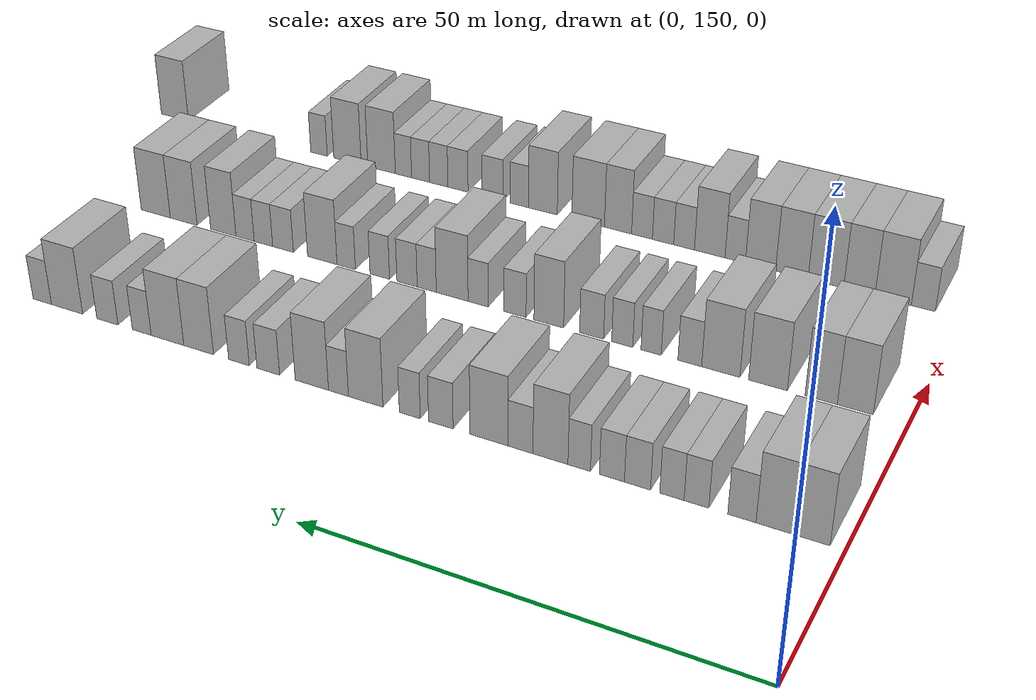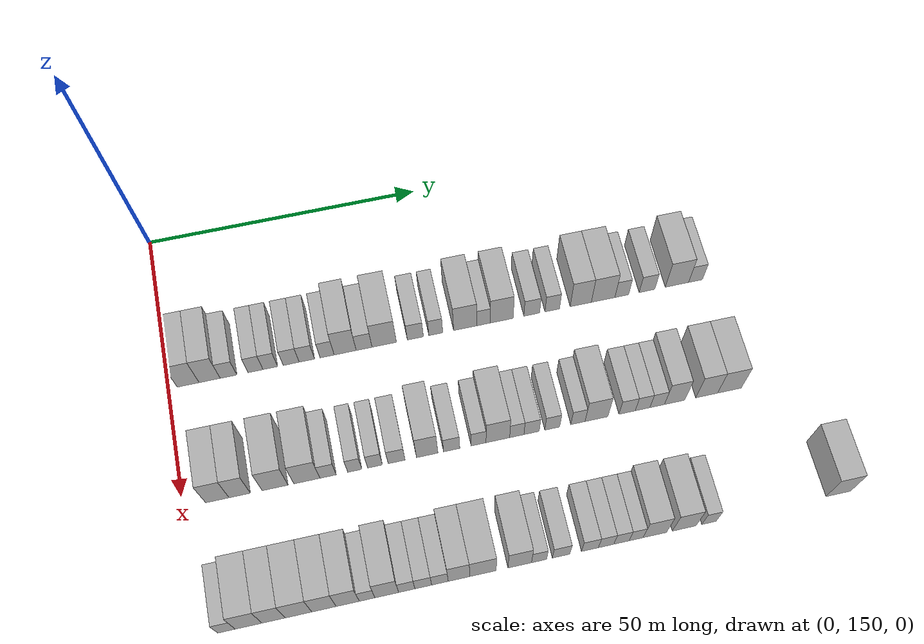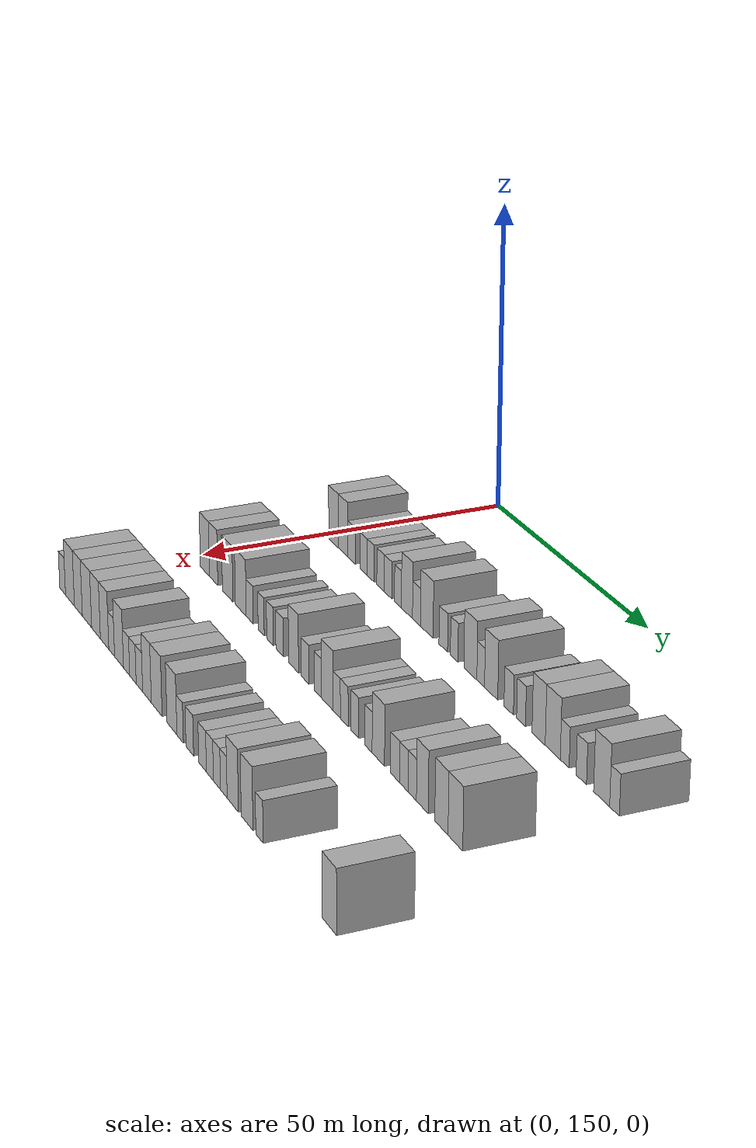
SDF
<sdf version="1.6">
 <world name="default">
  <model name="building_96">
   <static>1</static>
   <pose>25.0000 153.5775 0 0.000000 0.000000 0.000000</pose>
   <link name="link">
    <pose>0 0 4.50 0 0 0</pose>
    <collision name="collision"><geometry><box><size>10.0000 3.8732 9.0000</size></box></geometry></collision>
    <visual name="visual">
     <cast_shadows>0</cast_shadows>
     <geometry><box><size>10.0000 3.8732 9.0000</size></box></geometry>
     <material>
      <script>
       <uri>model://HANNAS_wall/materials/scripts</uri>
       <uri>model://HANNAS_wall/materials/textures</uri>
       <name>vrc/HANNAS_wall</name>
      </script>
     </material>
    </visual>
   </link>
  </model>
  <model name="building_97">
   <static>1</static>
   <pose>25.0000 157.3864 0 0.000000 0.000000 0.000000</pose>
   <link name="link">
    <pose>0 0 4.50 0 0 0</pose>
    <collision name="collision"><geometry><box><size>10.0000 3.7445 9.0000</size></box></geometry></collision>
    <visual name="visual">
     <cast_shadows>0</cast_shadows>
     <geometry><box><size>10.0000 3.7445 9.0000</size></box></geometry>
     <material>
      <script>
       <uri>model://HANNAS_wall/materials/scripts</uri>
       <uri>model://HANNAS_wall/materials/textures</uri>
       <name>vrc/HANNAS_wall</name>
      </script>
     </material>
    </visual>
   </link>
  </model>
  <model name="building_98">
   <static>1</static>
   <pose>25.0000 160.7393 0 0.000000 0.000000 0.000000</pose>
   <link name="link">
    <pose>0 0 3.00 0 0 0</pose>
    <collision name="collision"><geometry><box><size>10.0000 2.9612 6.0000</size></box></geometry></collision>
    <visual name="visual">
     <cast_shadows>0</cast_shadows>
     <geometry><box><size>10.0000 2.9612 6.0000</size></box></geometry>
     <material>
      <script>
       <uri>model://HANNAS_wall/materials/scripts</uri>
       <uri>model://HANNAS_wall/materials/textures</uri>
       <name>vrc/HANNAS_wall</name>
      </script>
     </material>
    </visual>
   </link>
  </model>
  <model name="building_99">
   <static>1</static>
   <pose>25.0000 165.5479 0 0.000000 0.000000 0.000000</pose>
   <link name="link">
    <pose>0 0 3.00 0 0 0</pose>
    <collision name="collision"><geometry><box><size>10.0000 2.6561 6.0000</size></box></geometry></collision>
    <visual name="visual">
     <cast_shadows>0</cast_shadows>
     <geometry><box><size>10.0000 2.6561 6.0000</size></box></geometry>
     <material>
      <script>
       <uri>model://HANNAS_wall/materials/scripts</uri>
       <uri>model://HANNAS_wall/materials/textures</uri>
       <name>vrc/HANNAS_wall</name>
      </script>
     </material>
    </visual>
   </link>
  </model>
  <model name="building_100">
   <static>1</static>
   <pose>25.0000 168.1900 0 0.000000 0.000000 0.000000</pose>
   <link name="link">
    <pose>0 0 3.00 0 0 0</pose>
    <collision name="collision"><geometry><box><size>10.0000 2.6281 6.0000</size></box></geometry></collision>
    <visual name="visual">
     <cast_shadows>0</cast_shadows>
     <geometry><box><size>10.0000 2.6281 6.0000</size></box></geometry>
     <material>
      <script>
       <uri>model://HANNAS_wall/materials/scripts</uri>
       <uri>model://HANNAS_wall/materials/textures</uri>
       <name>vrc/HANNAS_wall</name>
      </script>
     </material>
    </visual>
   </link>
  </model>
  <model name="building_101">
   <static>1</static>
   <pose>25.0000 171.9355 0 0.000000 0.000000 0.000000</pose>
   <link name="link">
    <pose>0 0 3.00 0 0 0</pose>
    <collision name="collision"><geometry><box><size>10.0000 2.8630 6.0000</size></box></geometry></collision>
    <visual name="visual">
     <cast_shadows>0</cast_shadows>
     <geometry><box><size>10.0000 2.8630 6.0000</size></box></geometry>
     <material>
      <script>
       <uri>model://HANNAS_wall/materials/scripts</uri>
       <uri>model://HANNAS_wall/materials/textures</uri>
       <name>vrc/HANNAS_wall</name>
      </script>
     </material>
    </visual>
   </link>
  </model>
  <model name="building_102">
   <static>1</static>
   <pose>25.0000 174.7553 0 0.000000 0.000000 0.000000</pose>
   <link name="link">
    <pose>0 0 3.00 0 0 0</pose>
    <collision name="collision"><geometry><box><size>10.0000 2.7766 6.0000</size></box></geometry></collision>
    <visual name="visual">
     <cast_shadows>0</cast_shadows>
     <geometry><box><size>10.0000 2.7766 6.0000</size></box></geometry>
     <material>
      <script>
       <uri>model://HANNAS_wall/materials/scripts</uri>
       <uri>model://HANNAS_wall/materials/textures</uri>
       <name>vrc/HANNAS_wall</name>
      </script>
     </material>
    </visual>
   </link>
  </model>
  <model name="building_103">
   <static>1</static>
   <pose>25.0000 178.4107 0 0.000000 0.000000 0.000000</pose>
   <link name="link">
    <pose>0 0 3.00 0 0 0</pose>
    <collision name="collision"><geometry><box><size>10.0000 2.5343 6.0000</size></box></geometry></collision>
    <visual name="visual">
     <cast_shadows>0</cast_shadows>
     <geometry><box><size>10.0000 2.5343 6.0000</size></box></geometry>
     <material>
      <script>
       <uri>model://HANNAS_wall/materials/scripts</uri>
       <uri>model://HANNAS_wall/materials/textures</uri>
       <name>vrc/HANNAS_wall</name>
      </script>
     </material>
    </visual>
   </link>
  </model>
  <model name="building_104">
   <static>1</static>
   <pose>25.0000 181.6735 0 0.000000 0.000000 0.000000</pose>
   <link name="link">
    <pose>0 0 4.50 0 0 0</pose>
    <collision name="collision"><geometry><box><size>10.0000 3.9914 9.0000</size></box></geometry></collision>
    <visual name="visual">
     <cast_shadows>0</cast_shadows>
     <geometry><box><size>10.0000 3.9914 9.0000</size></box></geometry>
     <material>
      <script>
       <uri>model://HANNAS_wall/materials/scripts</uri>
       <uri>model://HANNAS_wall/materials/textures</uri>
       <name>vrc/HANNAS_wall</name>
      </script>
     </material>
    </visual>
   </link>
  </model>
  <model name="building_105">
   <static>1</static>
   <pose>25.0000 185.1087 0 0.000000 0.000000 0.000000</pose>
   <link name="link">
    <pose>0 0 3.00 0 0 0</pose>
    <collision name="collision"><geometry><box><size>10.0000 2.8789 6.0000</size></box></geometry></collision>
    <visual name="visual">
     <cast_shadows>0</cast_shadows>
     <geometry><box><size>10.0000 2.8789 6.0000</size></box></geometry>
     <material>
      <script>
       <uri>model://HANNAS_wall/materials/scripts</uri>
       <uri>model://HANNAS_wall/materials/textures</uri>
       <name>vrc/HANNAS_wall</name>
      </script>
     </material>
    </visual>
   </link>
  </model>
  <model name="building_106">
   <static>1</static>
   <pose>25.0000 188.7683 0 0.000000 0.000000 0.000000</pose>
   <link name="link">
    <pose>0 0 4.50 0 0 0</pose>
    <collision name="collision"><geometry><box><size>10.0000 4.4403 9.0000</size></box></geometry></collision>
    <visual name="visual">
     <cast_shadows>0</cast_shadows>
     <geometry><box><size>10.0000 4.4403 9.0000</size></box></geometry>
     <material>
      <script>
       <uri>model://HANNAS_wall/materials/scripts</uri>
       <uri>model://HANNAS_wall/materials/textures</uri>
       <name>vrc/HANNAS_wall</name>
      </script>
     </material>
    </visual>
   </link>
  </model>
  <model name="building_107">
   <static>1</static>
   <pose>25.0000 194.4571 0 0.000000 0.000000 0.000000</pose>
   <link name="link">
    <pose>0 0 3.00 0 0 0</pose>
    <collision name="collision"><geometry><box><size>10.0000 2.9374 6.0000</size></box></geometry></collision>
    <visual name="visual">
     <cast_shadows>0</cast_shadows>
     <geometry><box><size>10.0000 2.9374 6.0000</size></box></geometry>
     <material>
      <script>
       <uri>model://HANNAS_wall/materials/scripts</uri>
       <uri>model://HANNAS_wall/materials/textures</uri>
       <name>vrc/HANNAS_wall</name>
      </script>
     </material>
    </visual>
   </link>
  </model>
  <model name="building_108">
   <static>1</static>
   <pose>25.0000 198.1983 0 0.000000 0.000000 0.000000</pose>
   <link name="link">
    <pose>0 0 3.00 0 0 0</pose>
    <collision name="collision"><geometry><box><size>10.0000 2.5451 6.0000</size></box></geometry></collision>
    <visual name="visual">
     <cast_shadows>0</cast_shadows>
     <geometry><box><size>10.0000 2.5451 6.0000</size></box></geometry>
     <material>
      <script>
       <uri>model://HANNAS_wall/materials/scripts</uri>
       <uri>model://HANNAS_wall/materials/textures</uri>
       <name>vrc/HANNAS_wall</name>
      </script>
     </material>
    </visual>
   </link>
  </model>
  <model name="building_109">
   <static>1</static>
   <pose>25.0000 203.6093 0 0.000000 0.000000 0.000000</pose>
   <link name="link">
    <pose>0 0 4.50 0 0 0</pose>
    <collision name="collision"><geometry><box><size>10.0000 4.2769 9.0000</size></box></geometry></collision>
    <visual name="visual">
     <cast_shadows>0</cast_shadows>
     <geometry><box><size>10.0000 4.2769 9.0000</size></box></geometry>
     <material>
      <script>
       <uri>model://HANNAS_wall/materials/scripts</uri>
       <uri>model://HANNAS_wall/materials/textures</uri>
       <name>vrc/HANNAS_wall</name>
      </script>
     </material>
    </visual>
   </link>
  </model>
  <model name="building_110">
   <static>1</static>
   <pose>25.0000 206.9984 0 0.000000 0.000000 0.000000</pose>
   <link name="link">
    <pose>0 0 3.00 0 0 0</pose>
    <collision name="collision"><geometry><box><size>10.0000 2.5013 6.0000</size></box></geometry></collision>
    <visual name="visual">
     <cast_shadows>0</cast_shadows>
     <geometry><box><size>10.0000 2.5013 6.0000</size></box></geometry>
     <material>
      <script>
       <uri>model://HANNAS_wall/materials/scripts</uri>
       <uri>model://HANNAS_wall/materials/textures</uri>
       <name>vrc/HANNAS_wall</name>
      </script>
     </material>
    </visual>
   </link>
  </model>
  <model name="building_111">
   <static>1</static>
   <pose>25.0000 210.3649 0 0.000000 0.000000 0.000000</pose>
   <link name="link">
    <pose>0 0 4.50 0 0 0</pose>
    <collision name="collision"><geometry><box><size>10.0000 4.2317 9.0000</size></box></geometry></collision>
    <visual name="visual">
     <cast_shadows>0</cast_shadows>
     <geometry><box><size>10.0000 4.2317 9.0000</size></box></geometry>
     <material>
      <script>
       <uri>model://HANNAS_wall/materials/scripts</uri>
       <uri>model://HANNAS_wall/materials/textures</uri>
       <name>vrc/HANNAS_wall</name>
      </script>
     </material>
    </visual>
   </link>
  </model>
  <model name="building_112">
   <static>1</static>
   <pose>25.0000 215.9510 0 0.000000 0.000000 0.000000</pose>
   <link name="link">
    <pose>0 0 3.00 0 0 0</pose>
    <collision name="collision"><geometry><box><size>10.0000 2.9405 6.0000</size></box></geometry></collision>
    <visual name="visual">
     <cast_shadows>0</cast_shadows>
     <geometry><box><size>10.0000 2.9405 6.0000</size></box></geometry>
     <material>
      <script>
       <uri>model://HANNAS_wall/materials/scripts</uri>
       <uri>model://HANNAS_wall/materials/textures</uri>
       <name>vrc/HANNAS_wall</name>
      </script>
     </material>
    </visual>
   </link>
  </model>
  <model name="building_113">
   <static>1</static>
   <pose>25.0000 219.7814 0 0.000000 0.000000 0.000000</pose>
   <link name="link">
    <pose>0 0 3.00 0 0 0</pose>
    <collision name="collision"><geometry><box><size>10.0000 2.7203 6.0000</size></box></geometry></collision>
    <visual name="visual">
     <cast_shadows>0</cast_shadows>
     <geometry><box><size>10.0000 2.7203 6.0000</size></box></geometry>
     <material>
      <script>
       <uri>model://HANNAS_wall/materials/scripts</uri>
       <uri>model://HANNAS_wall/materials/textures</uri>
       <name>vrc/HANNAS_wall</name>
      </script>
     </material>
    </visual>
   </link>
  </model>
  <model name="building_114">
   <static>1</static>
   <pose>25.0000 225.1316 0 0.000000 0.000000 0.000000</pose>
   <link name="link">
    <pose>0 0 4.50 0 0 0</pose>
    <collision name="collision"><geometry><box><size>10.0000 3.9802 9.0000</size></box></geometry></collision>
    <visual name="visual">
     <cast_shadows>0</cast_shadows>
     <geometry><box><size>10.0000 3.9802 9.0000</size></box></geometry>
     <material>
      <script>
       <uri>model://HANNAS_wall/materials/scripts</uri>
       <uri>model://HANNAS_wall/materials/textures</uri>
       <name>vrc/HANNAS_wall</name>
      </script>
     </material>
    </visual>
   </link>
  </model>
  <model name="building_115">
   <static>1</static>
   <pose>25.0000 229.3415 0 0.000000 0.000000 0.000000</pose>
   <link name="link">
    <pose>0 0 4.50 0 0 0</pose>
    <collision name="collision"><geometry><box><size>10.0000 4.4395 9.0000</size></box></geometry></collision>
    <visual name="visual">
     <cast_shadows>0</cast_shadows>
     <geometry><box><size>10.0000 4.4395 9.0000</size></box></geometry>
     <material>
      <script>
       <uri>model://HANNAS_wall/materials/scripts</uri>
       <uri>model://HANNAS_wall/materials/textures</uri>
       <name>vrc/HANNAS_wall</name>
      </script>
     </material>
    </visual>
   </link>
  </model>
  <model name="building_116">
   <static>1</static>
   <pose>25.0000 232.8569 0 0.000000 0.000000 0.000000</pose>
   <link name="link">
    <pose>0 0 3.00 0 0 0</pose>
    <collision name="collision"><geometry><box><size>10.0000 2.5914 6.0000</size></box></geometry></collision>
    <visual name="visual">
     <cast_shadows>0</cast_shadows>
     <geometry><box><size>10.0000 2.5914 6.0000</size></box></geometry>
     <material>
      <script>
       <uri>model://HANNAS_wall/materials/scripts</uri>
       <uri>model://HANNAS_wall/materials/textures</uri>
       <name>vrc/HANNAS_wall</name>
      </script>
     </material>
    </visual>
   </link>
  </model>
  <model name="building_117">
   <static>1</static>
   <pose>25.0000 237.6333 0 0.000000 0.000000 0.000000</pose>
   <link name="link">
    <pose>0 0 3.00 0 0 0</pose>
    <collision name="collision"><geometry><box><size>10.0000 2.9615 6.0000</size></box></geometry></collision>
    <visual name="visual">
     <cast_shadows>0</cast_shadows>
     <geometry><box><size>10.0000 2.9615 6.0000</size></box></geometry>
     <material>
      <script>
       <uri>model://HANNAS_wall/materials/scripts</uri>
       <uri>model://HANNAS_wall/materials/textures</uri>
       <name>vrc/HANNAS_wall</name>
      </script>
     </material>
    </visual>
   </link>
  </model>
  <model name="building_118">
   <static>1</static>
   <pose>25.0000 243.3405 0 0.000000 0.000000 0.000000</pose>
   <link name="link">
    <pose>0 0 4.50 0 0 0</pose>
    <collision name="collision"><geometry><box><size>10.0000 4.4528 9.0000</size></box></geometry></collision>
    <visual name="visual">
     <cast_shadows>0</cast_shadows>
     <geometry><box><size>10.0000 4.4528 9.0000</size></box></geometry>
     <material>
      <script>
       <uri>model://HANNAS_wall/materials/scripts</uri>
       <uri>model://HANNAS_wall/materials/textures</uri>
       <name>vrc/HANNAS_wall</name>
      </script>
     </material>
    </visual>
   </link>
  </model>
  <model name="building_119">
   <static>1</static>
   <pose>25.0000 246.8928 0 0.000000 0.000000 0.000000</pose>
   <link name="link">
    <pose>0 0 3.00 0 0 0</pose>
    <collision name="collision"><geometry><box><size>10.0000 2.6519 6.0000</size></box></geometry></collision>
    <visual name="visual">
     <cast_shadows>0</cast_shadows>
     <geometry><box><size>10.0000 2.6519 6.0000</size></box></geometry>
     <material>
      <script>
       <uri>model://HANNAS_wall/materials/scripts</uri>
       <uri>model://HANNAS_wall/materials/textures</uri>
       <name>vrc/HANNAS_wall</name>
      </script>
     </material>
    </visual>
   </link>
  </model>
  <model name="building_211">
   <static>1</static>
   <pose>47.0000 155.9170 0 0.000000 0.000000 0.000000</pose>
   <link name="link">
    <pose>0 0 4.50 0 0 0</pose>
    <collision name="collision"><geometry><box><size>10.0000 3.9737 9.0000</size></box></geometry></collision>
    <visual name="visual">
     <cast_shadows>0</cast_shadows>
     <geometry><box><size>10.0000 3.9737 9.0000</size></box></geometry>
     <material>
      <script>
       <uri>model://HANNAS_wall/materials/scripts</uri>
       <uri>model://HANNAS_wall/materials/textures</uri>
       <name>vrc/HANNAS_wall</name>
      </script>
     </material>
    </visual>
   </link>
  </model>
  <model name="building_212">
   <static>1</static>
   <pose>47.0000 159.7180 0 0.000000 0.000000 0.000000</pose>
   <link name="link">
    <pose>0 0 4.50 0 0 0</pose>
    <collision name="collision"><geometry><box><size>10.0000 3.6283 9.0000</size></box></geometry></collision>
    <visual name="visual">
     <cast_shadows>0</cast_shadows>
     <geometry><box><size>10.0000 3.6283 9.0000</size></box></geometry>
     <material>
      <script>
       <uri>model://HANNAS_wall/materials/scripts</uri>
       <uri>model://HANNAS_wall/materials/textures</uri>
       <name>vrc/HANNAS_wall</name>
      </script>
     </material>
    </visual>
   </link>
  </model>
  <model name="building_213">
   <static>1</static>
   <pose>47.0000 165.7567 0 0.000000 0.000000 0.000000</pose>
   <link name="link">
    <pose>0 0 4.50 0 0 0</pose>
    <collision name="collision"><geometry><box><size>10.0000 4.4491 9.0000</size></box></geometry></collision>
    <visual name="visual">
     <cast_shadows>0</cast_shadows>
     <geometry><box><size>10.0000 4.4491 9.0000</size></box></geometry>
     <material>
      <script>
       <uri>model://HANNAS_wall/materials/scripts</uri>
       <uri>model://HANNAS_wall/materials/textures</uri>
       <name>vrc/HANNAS_wall</name>
      </script>
     </material>
    </visual>
   </link>
  </model>
  <model name="building_214">
   <static>1</static>
   <pose>47.0000 171.2234 0 0.000000 0.000000 0.000000</pose>
   <link name="link">
    <pose>0 0 4.50 0 0 0</pose>
    <collision name="collision"><geometry><box><size>10.0000 4.4842 9.0000</size></box></geometry></collision>
    <visual name="visual">
     <cast_shadows>0</cast_shadows>
     <geometry><box><size>10.0000 4.4842 9.0000</size></box></geometry>
     <material>
      <script>
       <uri>model://HANNAS_wall/materials/scripts</uri>
       <uri>model://HANNAS_wall/materials/textures</uri>
       <name>vrc/HANNAS_wall</name>
      </script>
     </material>
    </visual>
   </link>
  </model>
  <model name="building_215">
   <static>1</static>
   <pose>47.0000 174.8748 0 0.000000 0.000000 0.000000</pose>
   <link name="link">
    <pose>0 0 3.00 0 0 0</pose>
    <collision name="collision"><geometry><box><size>10.0000 2.8186 6.0000</size></box></geometry></collision>
    <visual name="visual">
     <cast_shadows>0</cast_shadows>
     <geometry><box><size>10.0000 2.8186 6.0000</size></box></geometry>
     <material>
      <script>
       <uri>model://HANNAS_wall/materials/scripts</uri>
       <uri>model://HANNAS_wall/materials/textures</uri>
       <name>vrc/HANNAS_wall</name>
      </script>
     </material>
    </visual>
   </link>
  </model>
  <model name="building_216">
   <static>1</static>
   <pose>47.0000 179.5032 0 0.000000 0.000000 0.000000</pose>
   <link name="link">
    <pose>0 0 3.00 0 0 0</pose>
    <collision name="collision"><geometry><box><size>10.0000 2.4382 6.0000</size></box></geometry></collision>
    <visual name="visual">
     <cast_shadows>0</cast_shadows>
     <geometry><box><size>10.0000 2.4382 6.0000</size></box></geometry>
     <material>
      <script>
       <uri>model://HANNAS_wall/materials/scripts</uri>
       <uri>model://HANNAS_wall/materials/textures</uri>
       <name>vrc/HANNAS_wall</name>
      </script>
     </material>
    </visual>
   </link>
  </model>
  <model name="building_217">
   <static>1</static>
   <pose>47.0000 183.0103 0 0.000000 0.000000 0.000000</pose>
   <link name="link">
    <pose>0 0 3.00 0 0 0</pose>
    <collision name="collision"><geometry><box><size>10.0000 2.5760 6.0000</size></box></geometry></collision>
    <visual name="visual">
     <cast_shadows>0</cast_shadows>
     <geometry><box><size>10.0000 2.5760 6.0000</size></box></geometry>
     <material>
      <script>
       <uri>model://HANNAS_wall/materials/scripts</uri>
       <uri>model://HANNAS_wall/materials/textures</uri>
       <name>vrc/HANNAS_wall</name>
      </script>
     </material>
    </visual>
   </link>
  </model>
  <model name="building_218">
   <static>1</static>
   <pose>47.0000 186.7795 0 0.000000 0.000000 0.000000</pose>
   <link name="link">
    <pose>0 0 3.00 0 0 0</pose>
    <collision name="collision"><geometry><box><size>10.0000 2.9625 6.0000</size></box></geometry></collision>
    <visual name="visual">
     <cast_shadows>0</cast_shadows>
     <geometry><box><size>10.0000 2.9625 6.0000</size></box></geometry>
     <material>
      <script>
       <uri>model://HANNAS_wall/materials/scripts</uri>
       <uri>model://HANNAS_wall/materials/textures</uri>
       <name>vrc/HANNAS_wall</name>
      </script>
     </material>
    </visual>
   </link>
  </model>
  <model name="building_219">
   <static>1</static>
   <pose>47.0000 192.1345 0 0.000000 0.000000 0.000000</pose>
   <link name="link">
    <pose>0 0 4.50 0 0 0</pose>
    <collision name="collision"><geometry><box><size>10.0000 3.7474 9.0000</size></box></geometry></collision>
    <visual name="visual">
     <cast_shadows>0</cast_shadows>
     <geometry><box><size>10.0000 3.7474 9.0000</size></box></geometry>
     <material>
      <script>
       <uri>model://HANNAS_wall/materials/scripts</uri>
       <uri>model://HANNAS_wall/materials/textures</uri>
       <name>vrc/HANNAS_wall</name>
      </script>
     </material>
    </visual>
   </link>
  </model>
  <model name="building_220">
   <static>1</static>
   <pose>47.0000 196.4306 0 0.000000 0.000000 0.000000</pose>
   <link name="link">
    <pose>0 0 3.00 0 0 0</pose>
    <collision name="collision"><geometry><box><size>10.0000 2.8448 6.0000</size></box></geometry></collision>
    <visual name="visual">
     <cast_shadows>0</cast_shadows>
     <geometry><box><size>10.0000 2.8448 6.0000</size></box></geometry>
     <material>
      <script>
       <uri>model://HANNAS_wall/materials/scripts</uri>
       <uri>model://HANNAS_wall/materials/textures</uri>
       <name>vrc/HANNAS_wall</name>
      </script>
     </material>
    </visual>
   </link>
  </model>
  <model name="building_221">
   <static>1</static>
   <pose>47.0000 201.1731 0 0.000000 0.000000 0.000000</pose>
   <link name="link">
    <pose>0 0 3.00 0 0 0</pose>
    <collision name="collision"><geometry><box><size>10.0000 2.6404 6.0000</size></box></geometry></collision>
    <visual name="visual">
     <cast_shadows>0</cast_shadows>
     <geometry><box><size>10.0000 2.6404 6.0000</size></box></geometry>
     <material>
      <script>
       <uri>model://HANNAS_wall/materials/scripts</uri>
       <uri>model://HANNAS_wall/materials/textures</uri>
       <name>vrc/HANNAS_wall</name>
      </script>
     </material>
    </visual>
   </link>
  </model>
  <model name="building_222">
   <static>1</static>
   <pose>47.0000 204.5864 0 0.000000 0.000000 0.000000</pose>
   <link name="link">
    <pose>0 0 4.50 0 0 0</pose>
    <collision name="collision"><geometry><box><size>10.0000 4.1862 9.0000</size></box></geometry></collision>
    <visual name="visual">
     <cast_shadows>0</cast_shadows>
     <geometry><box><size>10.0000 4.1862 9.0000</size></box></geometry>
     <material>
      <script>
       <uri>model://HANNAS_wall/materials/scripts</uri>
       <uri>model://HANNAS_wall/materials/textures</uri>
       <name>vrc/HANNAS_wall</name>
      </script>
     </material>
    </visual>
   </link>
  </model>
  <model name="building_223">
   <static>1</static>
   <pose>47.0000 207.9516 0 0.000000 0.000000 0.000000</pose>
   <link name="link">
    <pose>0 0 3.00 0 0 0</pose>
    <collision name="collision"><geometry><box><size>10.0000 2.5443 6.0000</size></box></geometry></collision>
    <visual name="visual">
     <cast_shadows>0</cast_shadows>
     <geometry><box><size>10.0000 2.5443 6.0000</size></box></geometry>
     <material>
      <script>
       <uri>model://HANNAS_wall/materials/scripts</uri>
       <uri>model://HANNAS_wall/materials/textures</uri>
       <name>vrc/HANNAS_wall</name>
      </script>
     </material>
    </visual>
   </link>
  </model>
  <model name="building_224">
   <static>1</static>
   <pose>47.0000 210.5832 0 0.000000 0.000000 0.000000</pose>
   <link name="link">
    <pose>0 0 3.00 0 0 0</pose>
    <collision name="collision"><geometry><box><size>10.0000 2.7188 6.0000</size></box></geometry></collision>
    <visual name="visual">
     <cast_shadows>0</cast_shadows>
     <geometry><box><size>10.0000 2.7188 6.0000</size></box></geometry>
     <material>
      <script>
       <uri>model://HANNAS_wall/materials/scripts</uri>
       <uri>model://HANNAS_wall/materials/textures</uri>
       <name>vrc/HANNAS_wall</name>
      </script>
     </material>
    </visual>
   </link>
  </model>
  <model name="building_225">
   <static>1</static>
   <pose>47.0000 214.2740 0 0.000000 0.000000 0.000000</pose>
   <link name="link">
    <pose>0 0 3.00 0 0 0</pose>
    <collision name="collision"><geometry><box><size>10.0000 2.6628 6.0000</size></box></geometry></collision>
    <visual name="visual">
     <cast_shadows>0</cast_shadows>
     <geometry><box><size>10.0000 2.6628 6.0000</size></box></geometry>
     <material>
      <script>
       <uri>model://HANNAS_wall/materials/scripts</uri>
       <uri>model://HANNAS_wall/materials/textures</uri>
       <name>vrc/HANNAS_wall</name>
      </script>
     </material>
    </visual>
   </link>
  </model>
  <model name="building_226">
   <static>1</static>
   <pose>47.0000 218.8760 0 0.000000 0.000000 0.000000</pose>
   <link name="link">
    <pose>0 0 3.00 0 0 0</pose>
    <collision name="collision"><geometry><box><size>10.0000 2.5411 6.0000</size></box></geometry></collision>
    <visual name="visual">
     <cast_shadows>0</cast_shadows>
     <geometry><box><size>10.0000 2.5411 6.0000</size></box></geometry>
     <material>
      <script>
       <uri>model://HANNAS_wall/materials/scripts</uri>
       <uri>model://HANNAS_wall/materials/textures</uri>
       <name>vrc/HANNAS_wall</name>
      </script>
     </material>
    </visual>
   </link>
  </model>
  <model name="building_227">
   <static>1</static>
   <pose>47.0000 222.2068 0 0.000000 0.000000 0.000000</pose>
   <link name="link">
    <pose>0 0 4.50 0 0 0</pose>
    <collision name="collision"><geometry><box><size>10.0000 4.1206 9.0000</size></box></geometry></collision>
    <visual name="visual">
     <cast_shadows>0</cast_shadows>
     <geometry><box><size>10.0000 4.1206 9.0000</size></box></geometry>
     <material>
      <script>
       <uri>model://HANNAS_wall/materials/scripts</uri>
       <uri>model://HANNAS_wall/materials/textures</uri>
       <name>vrc/HANNAS_wall</name>
      </script>
     </material>
    </visual>
   </link>
  </model>
  <model name="building_228">
   <static>1</static>
   <pose>47.0000 227.7448 0 0.000000 0.000000 0.000000</pose>
   <link name="link">
    <pose>0 0 3.00 0 0 0</pose>
    <collision name="collision"><geometry><box><size>10.0000 2.9554 6.0000</size></box></geometry></collision>
    <visual name="visual">
     <cast_shadows>0</cast_shadows>
     <geometry><box><size>10.0000 2.9554 6.0000</size></box></geometry>
     <material>
      <script>
       <uri>model://HANNAS_wall/materials/scripts</uri>
       <uri>model://HANNAS_wall/materials/textures</uri>
       <name>vrc/HANNAS_wall</name>
      </script>
     </material>
    </visual>
   </link>
  </model>
  <model name="building_229">
   <static>1</static>
   <pose>47.0000 230.5515 0 0.000000 0.000000 0.000000</pose>
   <link name="link">
    <pose>0 0 3.00 0 0 0</pose>
    <collision name="collision"><geometry><box><size>10.0000 2.6579 6.0000</size></box></geometry></collision>
    <visual name="visual">
     <cast_shadows>0</cast_shadows>
     <geometry><box><size>10.0000 2.6579 6.0000</size></box></geometry>
     <material>
      <script>
       <uri>model://HANNAS_wall/materials/scripts</uri>
       <uri>model://HANNAS_wall/materials/textures</uri>
       <name>vrc/HANNAS_wall</name>
      </script>
     </material>
    </visual>
   </link>
  </model>
  <model name="building_230">
   <static>1</static>
   <pose>47.0000 233.2001 0 0.000000 0.000000 0.000000</pose>
   <link name="link">
    <pose>0 0 3.00 0 0 0</pose>
    <collision name="collision"><geometry><box><size>10.0000 2.6394 6.0000</size></box></geometry></collision>
    <visual name="visual">
     <cast_shadows>0</cast_shadows>
     <geometry><box><size>10.0000 2.6394 6.0000</size></box></geometry>
     <material>
      <script>
       <uri>model://HANNAS_wall/materials/scripts</uri>
       <uri>model://HANNAS_wall/materials/textures</uri>
       <name>vrc/HANNAS_wall</name>
      </script>
     </material>
    </visual>
   </link>
  </model>
  <model name="building_231">
   <static>1</static>
   <pose>47.0000 236.3807 0 0.000000 0.000000 0.000000</pose>
   <link name="link">
    <pose>0 0 4.50 0 0 0</pose>
    <collision name="collision"><geometry><box><size>10.0000 3.7218 9.0000</size></box></geometry></collision>
    <visual name="visual">
     <cast_shadows>0</cast_shadows>
     <geometry><box><size>10.0000 3.7218 9.0000</size></box></geometry>
     <material>
      <script>
       <uri>model://HANNAS_wall/materials/scripts</uri>
       <uri>model://HANNAS_wall/materials/textures</uri>
       <name>vrc/HANNAS_wall</name>
      </script>
     </material>
    </visual>
   </link>
  </model>
  <model name="building_232">
   <static>1</static>
   <pose>47.0000 242.2447 0 0.000000 0.000000 0.000000</pose>
   <link name="link">
    <pose>0 0 4.50 0 0 0</pose>
    <collision name="collision"><geometry><box><size>10.0000 4.0061 9.0000</size></box></geometry></collision>
    <visual name="visual">
     <cast_shadows>0</cast_shadows>
     <geometry><box><size>10.0000 4.0061 9.0000</size></box></geometry>
     <material>
      <script>
       <uri>model://HANNAS_wall/materials/scripts</uri>
       <uri>model://HANNAS_wall/materials/textures</uri>
       <name>vrc/HANNAS_wall</name>
      </script>
     </material>
    </visual>
   </link>
  </model>
  <model name="building_233">
   <static>1</static>
   <pose>47.0000 246.4362 0 0.000000 0.000000 0.000000</pose>
   <link name="link">
    <pose>0 0 4.50 0 0 0</pose>
    <collision name="collision"><geometry><box><size>10.0000 4.3768 9.0000</size></box></geometry></collision>
    <visual name="visual">
     <cast_shadows>0</cast_shadows>
     <geometry><box><size>10.0000 4.3768 9.0000</size></box></geometry>
     <material>
      <script>
       <uri>model://HANNAS_wall/materials/scripts</uri>
       <uri>model://HANNAS_wall/materials/textures</uri>
       <name>vrc/HANNAS_wall</name>
      </script>
     </material>
    </visual>
   </link>
  </model>
  <model name="building_330">
   <static>1</static>
   <pose>69.0000 154.5612 0 0.000000 0.000000 0.000000</pose>
   <link name="link">
    <pose>0 0 3.00 0 0 0</pose>
    <collision name="collision"><geometry><box><size>10.0000 2.8368 6.0000</size></box></geometry></collision>
    <visual name="visual">
     <cast_shadows>0</cast_shadows>
     <geometry><box><size>10.0000 2.8368 6.0000</size></box></geometry>
     <material>
      <script>
       <uri>model://HANNAS_wall/materials/scripts</uri>
       <uri>model://HANNAS_wall/materials/textures</uri>
       <name>vrc/HANNAS_wall</name>
      </script>
     </material>
    </visual>
   </link>
  </model>
  <model name="building_331">
   <static>1</static>
   <pose>69.0000 158.1497 0 0.000000 0.000000 0.000000</pose>
   <link name="link">
    <pose>0 0 4.50 0 0 0</pose>
    <collision name="collision"><geometry><box><size>10.0000 4.3403 9.0000</size></box></geometry></collision>
    <visual name="visual">
     <cast_shadows>0</cast_shadows>
     <geometry><box><size>10.0000 4.3403 9.0000</size></box></geometry>
     <material>
      <script>
       <uri>model://HANNAS_wall/materials/scripts</uri>
       <uri>model://HANNAS_wall/materials/textures</uri>
       <name>vrc/HANNAS_wall</name>
      </script>
     </material>
    </visual>
   </link>
  </model>
  <model name="building_332">
   <static>1</static>
   <pose>69.0000 162.2159 0 0.000000 0.000000 0.000000</pose>
   <link name="link">
    <pose>0 0 4.50 0 0 0</pose>
    <collision name="collision"><geometry><box><size>10.0000 3.7921 9.0000</size></box></geometry></collision>
    <visual name="visual">
     <cast_shadows>0</cast_shadows>
     <geometry><box><size>10.0000 3.7921 9.0000</size></box></geometry>
     <material>
      <script>
       <uri>model://HANNAS_wall/materials/scripts</uri>
       <uri>model://HANNAS_wall/materials/textures</uri>
       <name>vrc/HANNAS_wall</name>
      </script>
     </material>
    </visual>
   </link>
  </model>
  <model name="building_333">
   <static>1</static>
   <pose>69.0000 166.3001 0 0.000000 0.000000 0.000000</pose>
   <link name="link">
    <pose>0 0 4.50 0 0 0</pose>
    <collision name="collision"><geometry><box><size>10.0000 4.3763 9.0000</size></box></geometry></collision>
    <visual name="visual">
     <cast_shadows>0</cast_shadows>
     <geometry><box><size>10.0000 4.3763 9.0000</size></box></geometry>
     <material>
      <script>
       <uri>model://HANNAS_wall/materials/scripts</uri>
       <uri>model://HANNAS_wall/materials/textures</uri>
       <name>vrc/HANNAS_wall</name>
      </script>
     </material>
    </visual>
   </link>
  </model>
  <model name="building_334">
   <static>1</static>
   <pose>69.0000 170.5064 0 0.000000 0.000000 0.000000</pose>
   <link name="link">
    <pose>0 0 4.50 0 0 0</pose>
    <collision name="collision"><geometry><box><size>10.0000 4.0363 9.0000</size></box></geometry></collision>
    <visual name="visual">
     <cast_shadows>0</cast_shadows>
     <geometry><box><size>10.0000 4.0363 9.0000</size></box></geometry>
     <material>
      <script>
       <uri>model://HANNAS_wall/materials/scripts</uri>
       <uri>model://HANNAS_wall/materials/textures</uri>
       <name>vrc/HANNAS_wall</name>
      </script>
     </material>
    </visual>
   </link>
  </model>
  <model name="building_335">
   <static>1</static>
   <pose>69.0000 174.4324 0 0.000000 0.000000 0.000000</pose>
   <link name="link">
    <pose>0 0 4.50 0 0 0</pose>
    <collision name="collision"><geometry><box><size>10.0000 3.8158 9.0000</size></box></geometry></collision>
    <visual name="visual">
     <cast_shadows>0</cast_shadows>
     <geometry><box><size>10.0000 3.8158 9.0000</size></box></geometry>
     <material>
      <script>
       <uri>model://HANNAS_wall/materials/scripts</uri>
       <uri>model://HANNAS_wall/materials/textures</uri>
       <name>vrc/HANNAS_wall</name>
      </script>
     </material>
    </visual>
   </link>
  </model>
  <model name="building_336">
   <static>1</static>
   <pose>69.0000 177.6396 0 0.000000 0.000000 0.000000</pose>
   <link name="link">
    <pose>0 0 3.00 0 0 0</pose>
    <collision name="collision"><geometry><box><size>10.0000 2.5986 6.0000</size></box></geometry></collision>
    <visual name="visual">
     <cast_shadows>0</cast_shadows>
     <geometry><box><size>10.0000 2.5986 6.0000</size></box></geometry>
     <material>
      <script>
       <uri>model://HANNAS_wall/materials/scripts</uri>
       <uri>model://HANNAS_wall/materials/textures</uri>
       <name>vrc/HANNAS_wall</name>
      </script>
     </material>
    </visual>
   </link>
  </model>
  <model name="building_337">
   <static>1</static>
   <pose>69.0000 180.9123 0 0.000000 0.000000 0.000000</pose>
   <link name="link">
    <pose>0 0 4.50 0 0 0</pose>
    <collision name="collision"><geometry><box><size>10.0000 3.9468 9.0000</size></box></geometry></collision>
    <visual name="visual">
     <cast_shadows>0</cast_shadows>
     <geometry><box><size>10.0000 3.9468 9.0000</size></box></geometry>
     <material>
      <script>
       <uri>model://HANNAS_wall/materials/scripts</uri>
       <uri>model://HANNAS_wall/materials/textures</uri>
       <name>vrc/HANNAS_wall</name>
      </script>
     </material>
    </visual>
   </link>
  </model>
  <model name="building_338">
   <static>1</static>
   <pose>69.0000 184.2384 0 0.000000 0.000000 0.000000</pose>
   <link name="link">
    <pose>0 0 3.00 0 0 0</pose>
    <collision name="collision"><geometry><box><size>10.0000 2.7054 6.0000</size></box></geometry></collision>
    <visual name="visual">
     <cast_shadows>0</cast_shadows>
     <geometry><box><size>10.0000 2.7054 6.0000</size></box></geometry>
     <material>
      <script>
       <uri>model://HANNAS_wall/materials/scripts</uri>
       <uri>model://HANNAS_wall/materials/textures</uri>
       <name>vrc/HANNAS_wall</name>
      </script>
     </material>
    </visual>
   </link>
  </model>
  <model name="building_339">
   <static>1</static>
   <pose>69.0000 186.9895 0 0.000000 0.000000 0.000000</pose>
   <link name="link">
    <pose>0 0 3.00 0 0 0</pose>
    <collision name="collision"><geometry><box><size>10.0000 2.7968 6.0000</size></box></geometry></collision>
    <visual name="visual">
     <cast_shadows>0</cast_shadows>
     <geometry><box><size>10.0000 2.7968 6.0000</size></box></geometry>
     <material>
      <script>
       <uri>model://HANNAS_wall/materials/scripts</uri>
       <uri>model://HANNAS_wall/materials/textures</uri>
       <name>vrc/HANNAS_wall</name>
      </script>
     </material>
    </visual>
   </link>
  </model>
  <model name="building_340">
   <static>1</static>
   <pose>69.0000 189.7709 0 0.000000 0.000000 0.000000</pose>
   <link name="link">
    <pose>0 0 3.00 0 0 0</pose>
    <collision name="collision"><geometry><box><size>10.0000 2.7659 6.0000</size></box></geometry></collision>
    <visual name="visual">
     <cast_shadows>0</cast_shadows>
     <geometry><box><size>10.0000 2.7659 6.0000</size></box></geometry>
     <material>
      <script>
       <uri>model://HANNAS_wall/materials/scripts</uri>
       <uri>model://HANNAS_wall/materials/textures</uri>
       <name>vrc/HANNAS_wall</name>
      </script>
     </material>
    </visual>
   </link>
  </model>
  <model name="building_341">
   <static>1</static>
   <pose>69.0000 192.9765 0 0.000000 0.000000 0.000000</pose>
   <link name="link">
    <pose>0 0 4.50 0 0 0</pose>
    <collision name="collision"><geometry><box><size>10.0000 3.6454 9.0000</size></box></geometry></collision>
    <visual name="visual">
     <cast_shadows>0</cast_shadows>
     <geometry><box><size>10.0000 3.6454 9.0000</size></box></geometry>
     <material>
      <script>
       <uri>model://HANNAS_wall/materials/scripts</uri>
       <uri>model://HANNAS_wall/materials/textures</uri>
       <name>vrc/HANNAS_wall</name>
      </script>
     </material>
    </visual>
   </link>
  </model>
  <model name="building_342">
   <static>1</static>
   <pose>69.0000 197.0180 0 0.000000 0.000000 0.000000</pose>
   <link name="link">
    <pose>0 0 4.50 0 0 0</pose>
    <collision name="collision"><geometry><box><size>10.0000 4.4376 9.0000</size></box></geometry></collision>
    <visual name="visual">
     <cast_shadows>0</cast_shadows>
     <geometry><box><size>10.0000 4.4376 9.0000</size></box></geometry>
     <material>
      <script>
       <uri>model://HANNAS_wall/materials/scripts</uri>
       <uri>model://HANNAS_wall/materials/textures</uri>
       <name>vrc/HANNAS_wall</name>
      </script>
     </material>
    </visual>
   </link>
  </model>
  <model name="building_343">
   <static>1</static>
   <pose>69.0000 203.2336 0 0.000000 0.000000 0.000000</pose>
   <link name="link">
    <pose>0 0 4.50 0 0 0</pose>
    <collision name="collision"><geometry><box><size>10.0000 3.9936 9.0000</size></box></geometry></collision>
    <visual name="visual">
     <cast_shadows>0</cast_shadows>
     <geometry><box><size>10.0000 3.9936 9.0000</size></box></geometry>
     <material>
      <script>
       <uri>model://HANNAS_wall/materials/scripts</uri>
       <uri>model://HANNAS_wall/materials/textures</uri>
       <name>vrc/HANNAS_wall</name>
      </script>
     </material>
    </visual>
   </link>
  </model>
  <model name="building_344">
   <static>1</static>
   <pose>69.0000 206.5105 0 0.000000 0.000000 0.000000</pose>
   <link name="link">
    <pose>0 0 3.00 0 0 0</pose>
    <collision name="collision"><geometry><box><size>10.0000 2.5603 6.0000</size></box></geometry></collision>
    <visual name="visual">
     <cast_shadows>0</cast_shadows>
     <geometry><box><size>10.0000 2.5603 6.0000</size></box></geometry>
     <material>
      <script>
       <uri>model://HANNAS_wall/materials/scripts</uri>
       <uri>model://HANNAS_wall/materials/textures</uri>
       <name>vrc/HANNAS_wall</name>
      </script>
     </material>
    </visual>
   </link>
  </model>
  <model name="building_345">
   <static>1</static>
   <pose>69.0000 210.2825 0 0.000000 0.000000 0.000000</pose>
   <link name="link">
    <pose>0 0 3.00 0 0 0</pose>
    <collision name="collision"><geometry><box><size>10.0000 2.9837 6.0000</size></box></geometry></collision>
    <visual name="visual">
     <cast_shadows>0</cast_shadows>
     <geometry><box><size>10.0000 2.9837 6.0000</size></box></geometry>
     <material>
      <script>
       <uri>model://HANNAS_wall/materials/scripts</uri>
       <uri>model://HANNAS_wall/materials/textures</uri>
       <name>vrc/HANNAS_wall</name>
      </script>
     </material>
    </visual>
   </link>
  </model>
  <model name="building_346">
   <static>1</static>
   <pose>69.0000 215.2233 0 0.000000 0.000000 0.000000</pose>
   <link name="link">
    <pose>0 0 3.00 0 0 0</pose>
    <collision name="collision"><geometry><box><size>10.0000 2.8979 6.0000</size></box></geometry></collision>
    <visual name="visual">
     <cast_shadows>0</cast_shadows>
     <geometry><box><size>10.0000 2.8979 6.0000</size></box></geometry>
     <material>
      <script>
       <uri>model://HANNAS_wall/materials/scripts</uri>
       <uri>model://HANNAS_wall/materials/textures</uri>
       <name>vrc/HANNAS_wall</name>
      </script>
     </material>
    </visual>
   </link>
  </model>
  <model name="building_347">
   <static>1</static>
   <pose>69.0000 218.0007 0 0.000000 0.000000 0.000000</pose>
   <link name="link">
    <pose>0 0 3.00 0 0 0</pose>
    <collision name="collision"><geometry><box><size>10.0000 2.6570 6.0000</size></box></geometry></collision>
    <visual name="visual">
     <cast_shadows>0</cast_shadows>
     <geometry><box><size>10.0000 2.6570 6.0000</size></box></geometry>
     <material>
      <script>
       <uri>model://HANNAS_wall/materials/scripts</uri>
       <uri>model://HANNAS_wall/materials/textures</uri>
       <name>vrc/HANNAS_wall</name>
      </script>
     </material>
    </visual>
   </link>
  </model>
  <model name="building_348">
   <static>1</static>
   <pose>69.0000 220.6445 0 0.000000 0.000000 0.000000</pose>
   <link name="link">
    <pose>0 0 3.00 0 0 0</pose>
    <collision name="collision"><geometry><box><size>10.0000 2.6307 6.0000</size></box></geometry></collision>
    <visual name="visual">
     <cast_shadows>0</cast_shadows>
     <geometry><box><size>10.0000 2.6307 6.0000</size></box></geometry>
     <material>
      <script>
       <uri>model://HANNAS_wall/materials/scripts</uri>
       <uri>model://HANNAS_wall/materials/textures</uri>
       <name>vrc/HANNAS_wall</name>
      </script>
     </material>
    </visual>
   </link>
  </model>
  <model name="building_349">
   <static>1</static>
   <pose>69.0000 223.1658 0 0.000000 0.000000 0.000000</pose>
   <link name="link">
    <pose>0 0 3.00 0 0 0</pose>
    <collision name="collision"><geometry><box><size>10.0000 2.4119 6.0000</size></box></geometry></collision>
    <visual name="visual">
     <cast_shadows>0</cast_shadows>
     <geometry><box><size>10.0000 2.4119 6.0000</size></box></geometry>
     <material>
      <script>
       <uri>model://HANNAS_wall/materials/scripts</uri>
       <uri>model://HANNAS_wall/materials/textures</uri>
       <name>vrc/HANNAS_wall</name>
      </script>
     </material>
    </visual>
   </link>
  </model>
  <model name="building_350">
   <static>1</static>
   <pose>69.0000 226.4221 0 0.000000 0.000000 0.000000</pose>
   <link name="link">
    <pose>0 0 4.50 0 0 0</pose>
    <collision name="collision"><geometry><box><size>10.0000 4.1008 9.0000</size></box></geometry></collision>
    <visual name="visual">
     <cast_shadows>0</cast_shadows>
     <geometry><box><size>10.0000 4.1008 9.0000</size></box></geometry>
     <material>
      <script>
       <uri>model://HANNAS_wall/materials/scripts</uri>
       <uri>model://HANNAS_wall/materials/textures</uri>
       <name>vrc/HANNAS_wall</name>
      </script>
     </material>
    </visual>
   </link>
  </model>
  <model name="building_351">
   <static>1</static>
   <pose>69.0000 231.5447 0 0.000000 0.000000 0.000000</pose>
   <link name="link">
    <pose>0 0 4.50 0 0 0</pose>
    <collision name="collision"><geometry><box><size>10.0000 4.1443 9.0000</size></box></geometry></collision>
    <visual name="visual">
     <cast_shadows>0</cast_shadows>
     <geometry><box><size>10.0000 4.1443 9.0000</size></box></geometry>
     <material>
      <script>
       <uri>model://HANNAS_wall/materials/scripts</uri>
       <uri>model://HANNAS_wall/materials/textures</uri>
       <name>vrc/HANNAS_wall</name>
      </script>
     </material>
    </visual>
   </link>
  </model>
  <model name="building_352">
   <static>1</static>
   <pose>69.0000 235.8794 0 0.000000 0.000000 0.000000</pose>
   <link name="link">
    <pose>0 0 3.00 0 0 0</pose>
    <collision name="collision"><geometry><box><size>10.0000 2.5252 6.0000</size></box></geometry></collision>
    <visual name="visual">
     <cast_shadows>0</cast_shadows>
     <geometry><box><size>10.0000 2.5252 6.0000</size></box></geometry>
     <material>
      <script>
       <uri>model://HANNAS_wall/materials/scripts</uri>
       <uri>model://HANNAS_wall/materials/textures</uri>
       <name>vrc/HANNAS_wall</name>
      </script>
     </material>
    </visual>
   </link>
  </model>
  <model name="building_353">
   <static>1</static>
   <pose>69.0000 258.7815 0 0.000000 0.000000 0.000000</pose>
   <link name="link">
    <pose>0 0 4.50 0 0 0</pose>
    <collision name="collision"><geometry><box><size>10.0000 4.4263 9.0000</size></box></geometry></collision>
    <visual name="visual">
     <cast_shadows>0</cast_shadows>
     <geometry><box><size>10.0000 4.4263 9.0000</size></box></geometry>
     <material>
      <script>
       <uri>model://HANNAS_wall/materials/scripts</uri>
       <uri>model://HANNAS_wall/materials/textures</uri>
       <name>vrc/HANNAS_wall</name>
      </script>
     </material>
    </visual>
   </link>
  </model>
 </world>
</sdf>
